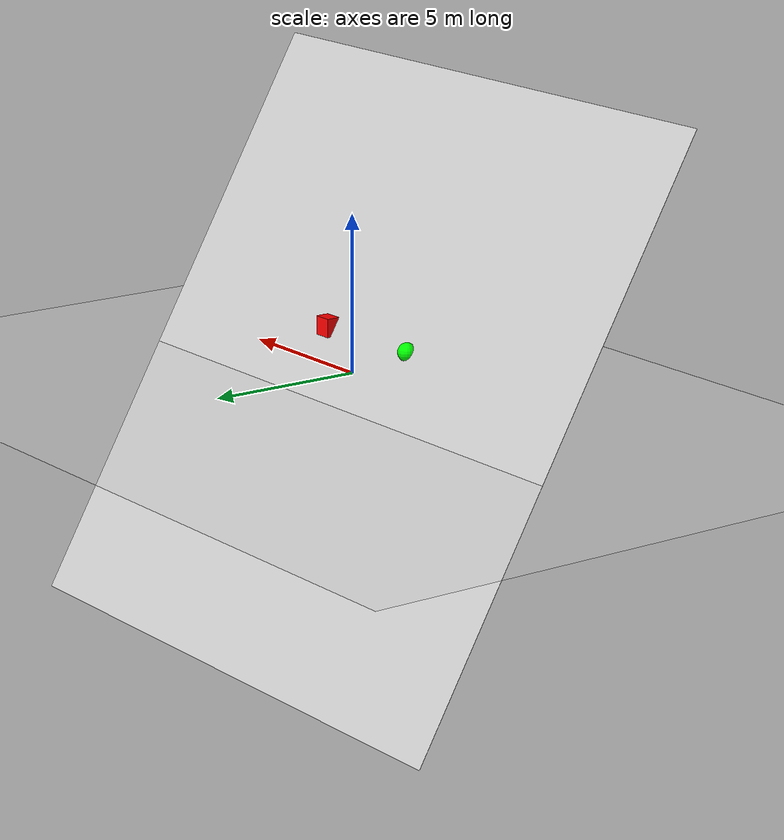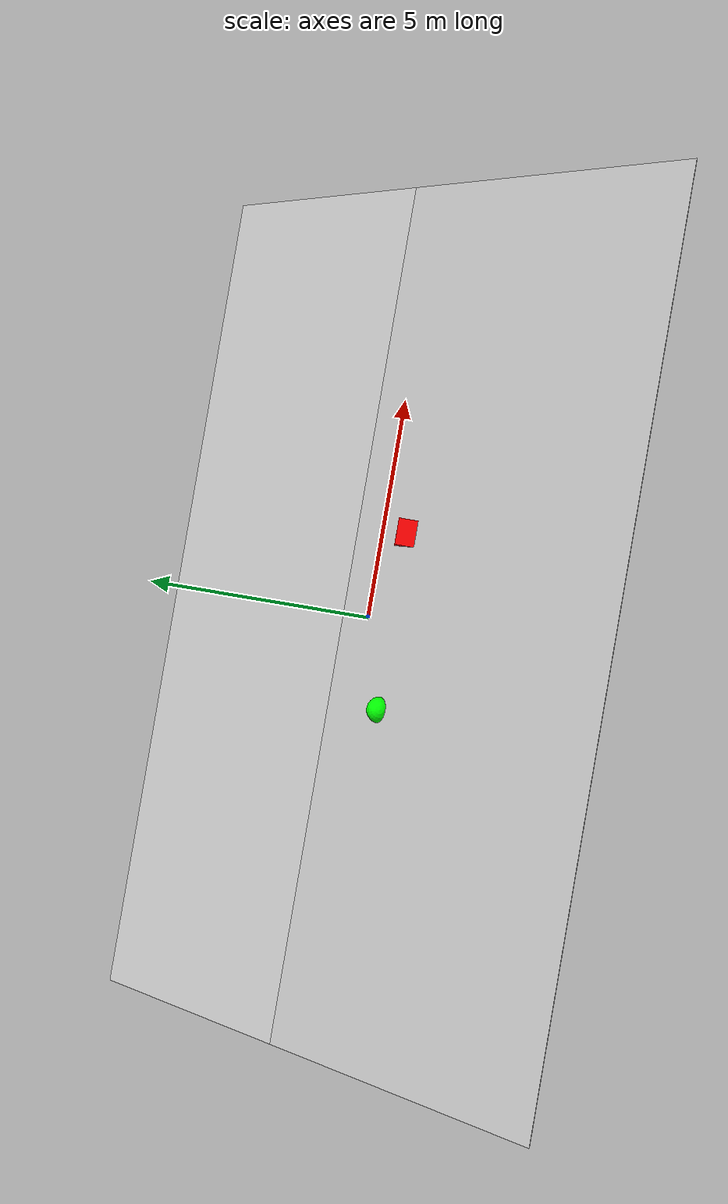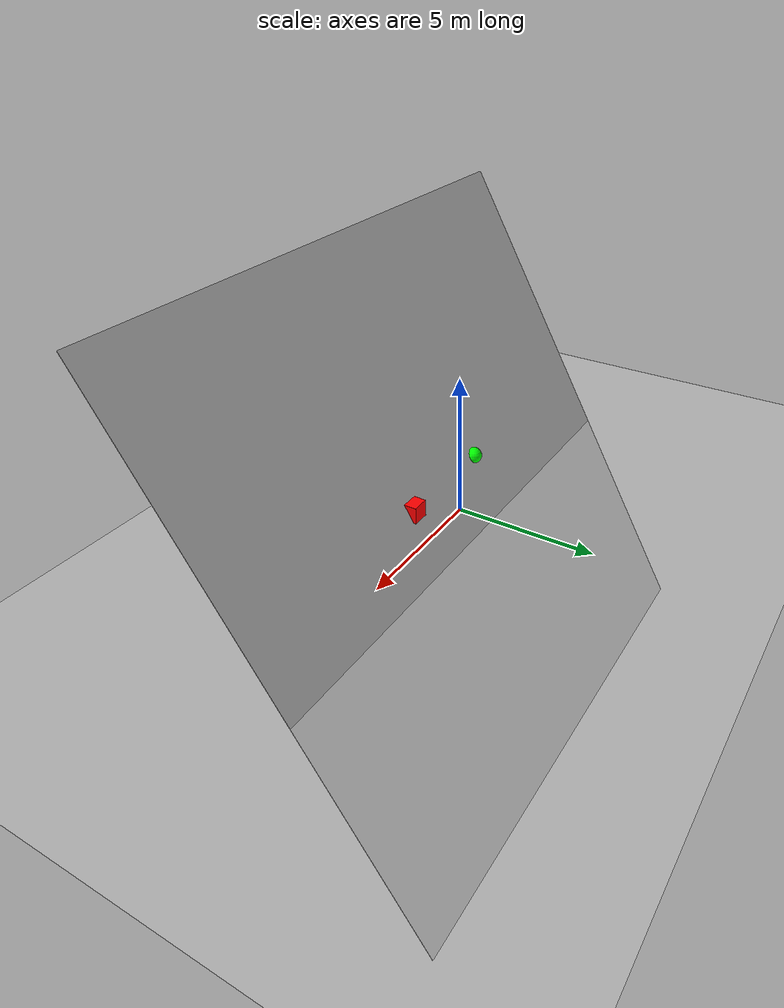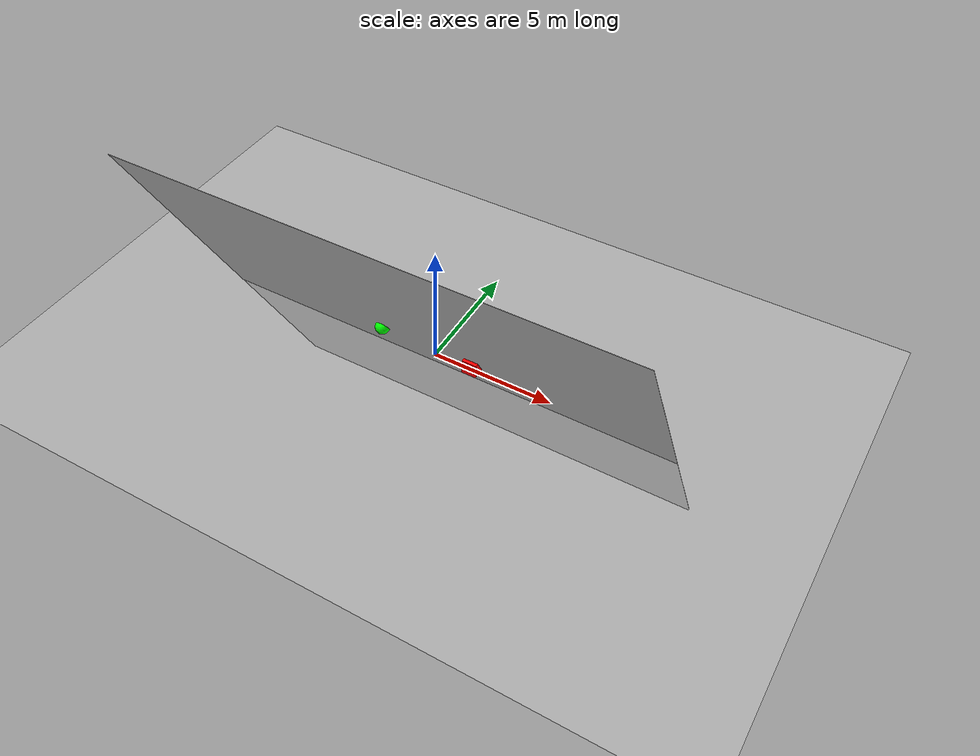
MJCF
<mujoco>
  <option gravity="0 0 -9.81" />
  <worldbody>
    <body name="object_4" pos="0 0 -1">
      <geom type="plane" size="30 30 0.1" rgba="0.9 0.9 0.9 1" />
    </body>
    <body name="object_3" pos="0 0 0">
      <geom type="plane" size="10 10 0.1" rgba="0.8 0.8 0.8 1" quat="0.5 0.86 0 0" />
    </body>
    <body name="object_1" pos="-2 -0.6 1">
      <geom type="sphere" size="0.3" density="1" friction="1 1 1" rgba="0 1 0 1" />
      <joint type="free" name="object_1_joint" />
    </body>
    <body name="object_2" pos="2 -0.6 1">
      <geom type="box" size="0.3 0.3 0.3" density="1" friction="0.1 0.1 0.1" rgba="1 0 0 1" />
      <joint type="free" name="object_2_joint" />
    </body>
  </worldbody>
</mujoco>
